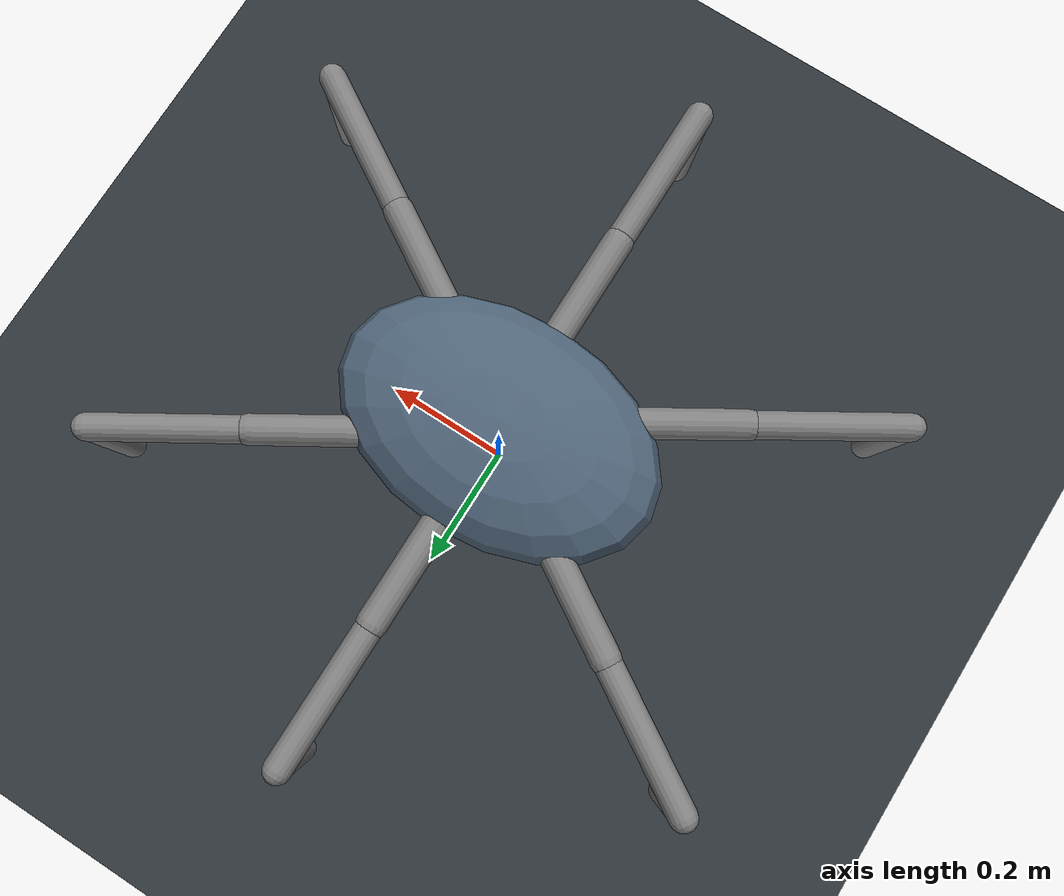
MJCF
<mujoco model="hexapod_leg_lift">
  <!-- 使用米和弧度作为统一单位。 -->
  <compiler angle="radian"/>
  <option timestep="0.002" gravity="0 0 0"/>

  <default>
    <!-- 当前只学习身体升降，暂不启用碰撞和腿部动力学。 -->
    <geom contype="0" conaffinity="0"/>
  </default>

  <worldbody>
    <light pos="0 0 2"/>
    <geom name="ground" type="plane" size="2 2 0.1" rgba="0.18 0.20 0.22 1"/>

    <!-- 身体只能沿 Z 轴运动；腿部角度与高度目标同步。 -->
    <body name="spider_body" pos="0 0 0.275">
      <joint name="body_height_joint" type="slide" axis="0 0 1" range="0 0.11" damping="4"/>
      <geom name="body_shell" type="ellipsoid" size="0.24 0.16 0.07" mass="1.2" rgba="0.30 0.38 0.46 1"/>

      <!-- 每条腿：根部横段、负责升降的中段、保持竖直的触地末段。 -->
      <body name="front_left_leg" pos="0.13 0.09 0" euler="0 0 0.55">
        <geom name="front_left_root" type="capsule" fromto="0 0 0 0.18 0 0" size="0.022" mass="0.08"/>
        <body name="front_left_middle" pos="0.18 0 0">
          <joint name="front_left_middle_joint" type="hinge" axis="0 1 0" range="0.3 1.1" damping="0.3"/>
          <geom name="front_left_middle_link" type="capsule" fromto="0 0 0 0.22 0 0" size="0.020" mass="0.07"/>
          <body name="front_left_distal" pos="0.22 0 0">
            <joint name="front_left_distal_joint" type="hinge" axis="0 1 0" range="-1.1 -0.3" damping="0.3"/>
            <geom name="front_left_foot" type="capsule" fromto="0 0 0 0 0 -0.182" size="0.018" mass="0.06"/>
          </body>
        </body>
      </body>

      <body name="front_right_leg" pos="0.13 -0.09 0" euler="0 0 -0.55">
        <geom name="front_right_root" type="capsule" fromto="0 0 0 0.18 0 0" size="0.022" mass="0.08"/>
        <body name="front_right_middle" pos="0.18 0 0">
          <joint name="front_right_middle_joint" type="hinge" axis="0 1 0" range="0.3 1.1" damping="0.3"/>
          <geom name="front_right_middle_link" type="capsule" fromto="0 0 0 0.22 0 0" size="0.020" mass="0.07"/>
          <body name="front_right_distal" pos="0.22 0 0">
            <joint name="front_right_distal_joint" type="hinge" axis="0 1 0" range="-1.1 -0.3" damping="0.3"/>
            <geom name="front_right_foot" type="capsule" fromto="0 0 0 0 0 -0.182" size="0.018" mass="0.06"/>
          </body>
        </body>
      </body>

      <body name="middle_left_leg" pos="0 0.13 0" euler="0 0 1.57">
        <geom name="middle_left_root" type="capsule" fromto="0 0 0 0.18 0 0" size="0.022" mass="0.08"/>
        <body name="middle_left_middle" pos="0.18 0 0">
          <joint name="middle_left_middle_joint" type="hinge" axis="0 1 0" range="0.3 1.1" damping="0.3"/>
          <geom name="middle_left_middle_link" type="capsule" fromto="0 0 0 0.22 0 0" size="0.020" mass="0.07"/>
          <body name="middle_left_distal" pos="0.22 0 0">
            <joint name="middle_left_distal_joint" type="hinge" axis="0 1 0" range="-1.1 -0.3" damping="0.3"/>
            <geom name="middle_left_foot" type="capsule" fromto="0 0 0 0 0 -0.182" size="0.018" mass="0.06"/>
          </body>
        </body>
      </body>

      <body name="middle_right_leg" pos="0 -0.13 0" euler="0 0 -1.57">
        <geom name="middle_right_root" type="capsule" fromto="0 0 0 0.18 0 0" size="0.022" mass="0.08"/>
        <body name="middle_right_middle" pos="0.18 0 0">
          <joint name="middle_right_middle_joint" type="hinge" axis="0 1 0" range="0.3 1.1" damping="0.3"/>
          <geom name="middle_right_middle_link" type="capsule" fromto="0 0 0 0.22 0 0" size="0.020" mass="0.07"/>
          <body name="middle_right_distal" pos="0.22 0 0">
            <joint name="middle_right_distal_joint" type="hinge" axis="0 1 0" range="-1.1 -0.3" damping="0.3"/>
            <geom name="middle_right_foot" type="capsule" fromto="0 0 0 0 0 -0.182" size="0.018" mass="0.06"/>
          </body>
        </body>
      </body>

      <body name="rear_left_leg" pos="-0.13 0.09 0" euler="0 0 2.59">
        <geom name="rear_left_root" type="capsule" fromto="0 0 0 0.18 0 0" size="0.022" mass="0.08"/>
        <body name="rear_left_middle" pos="0.18 0 0">
          <joint name="rear_left_middle_joint" type="hinge" axis="0 1 0" range="0.3 1.1" damping="0.3"/>
          <geom name="rear_left_middle_link" type="capsule" fromto="0 0 0 0.22 0 0" size="0.020" mass="0.07"/>
          <body name="rear_left_distal" pos="0.22 0 0">
            <joint name="rear_left_distal_joint" type="hinge" axis="0 1 0" range="-1.1 -0.3" damping="0.3"/>
            <geom name="rear_left_foot" type="capsule" fromto="0 0 0 0 0 -0.182" size="0.018" mass="0.06"/>
          </body>
        </body>
      </body>

      <body name="rear_right_leg" pos="-0.13 -0.09 0" euler="0 0 -2.59">
        <geom name="rear_right_root" type="capsule" fromto="0 0 0 0.18 0 0" size="0.022" mass="0.08"/>
        <body name="rear_right_middle" pos="0.18 0 0">
          <joint name="rear_right_middle_joint" type="hinge" axis="0 1 0" range="0.3 1.1" damping="0.3"/>
          <geom name="rear_right_middle_link" type="capsule" fromto="0 0 0 0.22 0 0" size="0.020" mass="0.07"/>
          <body name="rear_right_distal" pos="0.22 0 0">
            <joint name="rear_right_distal_joint" type="hinge" axis="0 1 0" range="-1.1 -0.3" damping="0.3"/>
            <geom name="rear_right_foot" type="capsule" fromto="0 0 0 0 0 -0.182" size="0.018" mass="0.06"/>
          </body>
        </body>
      </body>
    </body>
  </worldbody>

  <actuator>
    <!-- 身体高度电机与十二个腿部姿态电机同步工作。 -->
    <motor name="body_height_motor" joint="body_height_joint" ctrlrange="-30 30"/>
    <motor name="front_left_middle_motor" joint="front_left_middle_joint" ctrlrange="-8 8"/>
    <motor name="front_left_distal_motor" joint="front_left_distal_joint" ctrlrange="-8 8"/>
    <motor name="front_right_middle_motor" joint="front_right_middle_joint" ctrlrange="-8 8"/>
    <motor name="front_right_distal_motor" joint="front_right_distal_joint" ctrlrange="-8 8"/>
    <motor name="middle_left_middle_motor" joint="middle_left_middle_joint" ctrlrange="-8 8"/>
    <motor name="middle_left_distal_motor" joint="middle_left_distal_joint" ctrlrange="-8 8"/>
    <motor name="middle_right_middle_motor" joint="middle_right_middle_joint" ctrlrange="-8 8"/>
    <motor name="middle_right_distal_motor" joint="middle_right_distal_joint" ctrlrange="-8 8"/>
    <motor name="rear_left_middle_motor" joint="rear_left_middle_joint" ctrlrange="-8 8"/>
    <motor name="rear_left_distal_motor" joint="rear_left_distal_joint" ctrlrange="-8 8"/>
    <motor name="rear_right_middle_motor" joint="rear_right_middle_joint" ctrlrange="-8 8"/>
    <motor name="rear_right_distal_motor" joint="rear_right_distal_joint" ctrlrange="-8 8"/>
  </actuator>
</mujoco>
